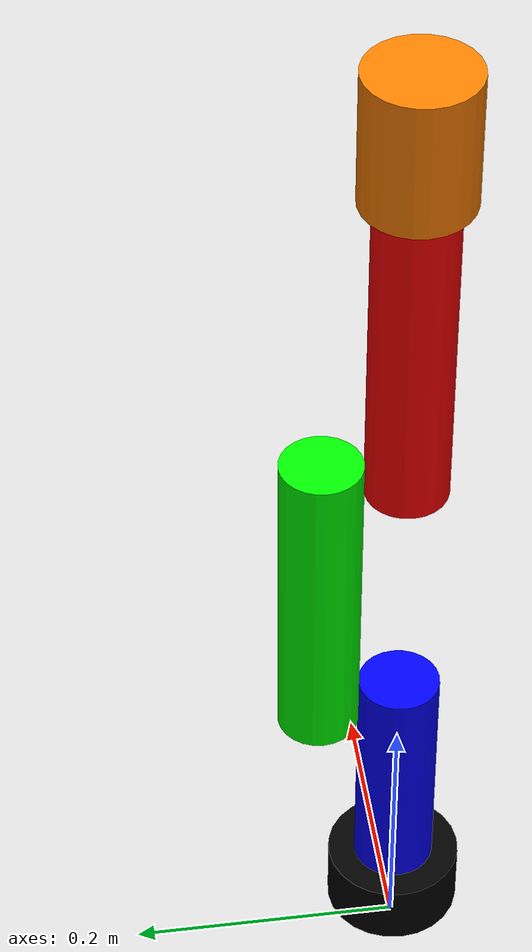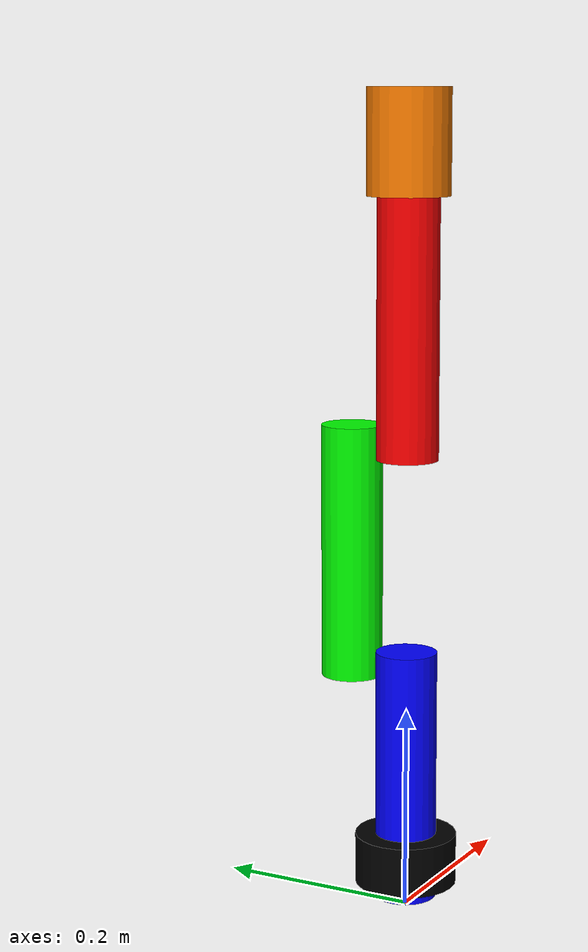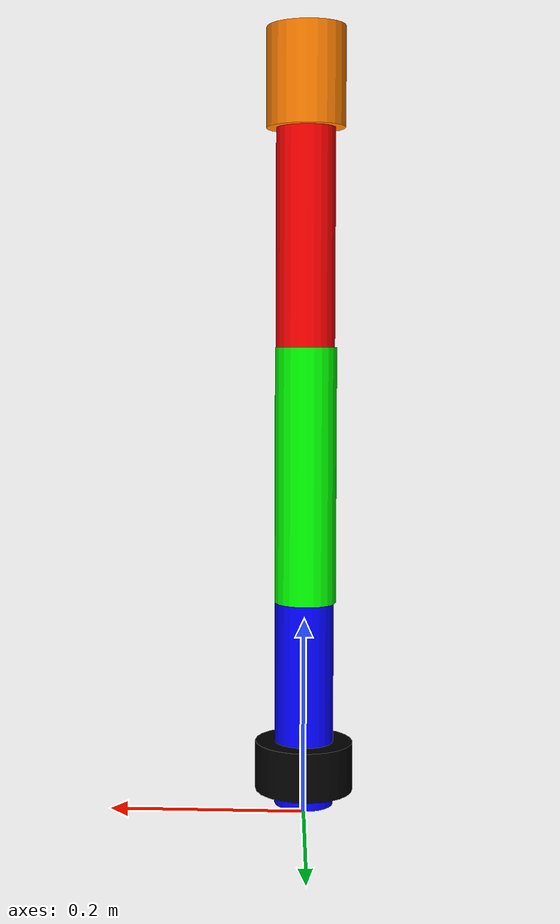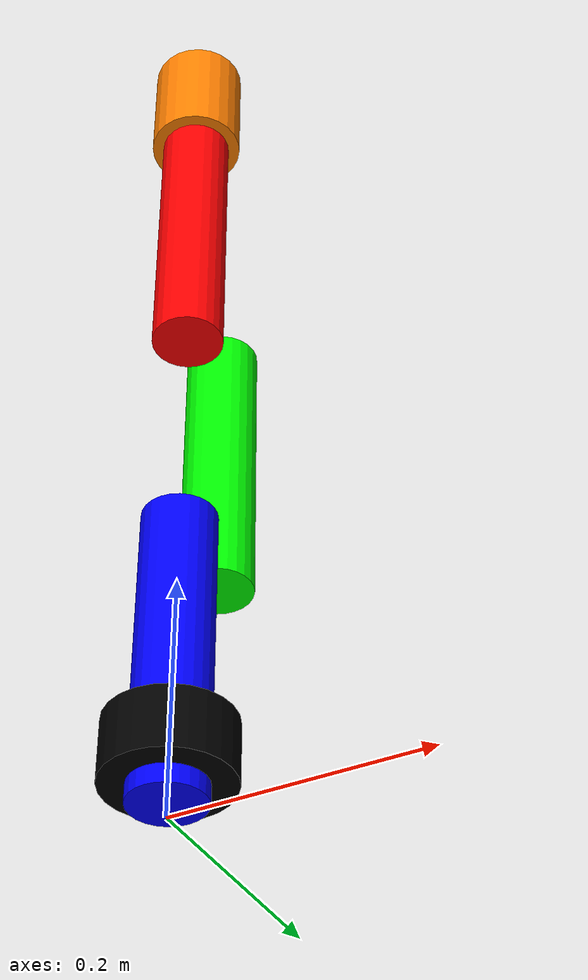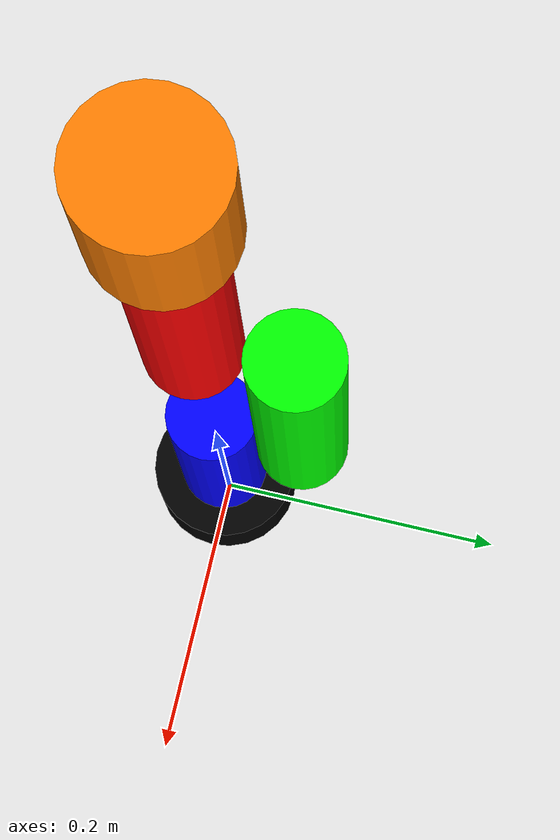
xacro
<?xml version="1.0"?>
<robot name="robot_arm" xmlns:xacro="http://ros.org/wiki/xacro">

  <xacro:include filename="$(find my_hexacopter)/urdf/gazebo_control.xacro"/>

  <xacro:property name="link_length" value="0.25"/>
  <xacro:property name="joint_radius" value="0.05"/>
  <xacro:property name="link_radius" value="0.03"/>
  <xacro:property name="gripper_length" value="0.1"/>
  <xacro:property name="link_mass" value="1.0"/>

  <link name="world">
    <inertial>
      <mass value="0.0"/>
      <origin xyz="0 0 0" rpy="0 0 0"/>
      <inertia ixx="0.0" ixy="0.0" ixz="0.0" iyy="0.0" iyz="0.0" izz="0.0"/>
    </inertial>
  </link>

<joint name="base_to_world" type="fixed">
  <parent link="world"/>
  <child link="base_link"/>
  <origin xyz="0 0 0" rpy="0 0 0"/>
</joint>

  <link name="base_link">
    <visual>
      <origin xyz="0 0 ${0.1 / 2}" rpy="0 0 0"/>
      <geometry>
        <cylinder length="0.05" radius="${link_radius + 0.02}"/>
      </geometry>
      <material name="black">
        <color rgba="0 0 0 1"/>
      </material>
    </visual>
    <collision>
      <origin xyz="0 0 ${0.1 / 2}" rpy="0 0 0"/>
      <geometry>
        <cylinder length="0.1" radius="${link_radius + 0.02}"/>
      </geometry>
    </collision>
    <inertial>
      <mass value="1.5"/>
      <origin xyz="0 0 ${0.1 / 2}" rpy="0 0 0"/>
      <inertia ixx="0.02" ixy="0.0" ixz="0.0" iyy="0.02" iyz="0.0" izz="0.02"/>
    </inertial>
  </link>

  <joint name="joint_1" type="revolute">
    <parent link="base_link"/>
    <child link="link_1"/>
    <origin xyz="0 0 ${0.01}" rpy="0 0 0"/>
    <axis xyz="0 1 0"/>
    <limit lower="-1.57" upper="1.57" effort="5.0" velocity="0.5"/>
    <dynamics damping="1.0" friction="1.0"/>
  </joint>

  <link name="link_1">
    <visual>
      <origin xyz="0 0 ${link_length / 2}" rpy="0 0 0"/>
      <geometry>
        <cylinder length="${link_length}" radius="${link_radius}"/>
      </geometry>
      <material name="blue">
        <color rgba="0 0 1 1"/>
      </material>
    </visual>
    <collision>
      <origin xyz="0 0 ${link_length / 2}" rpy="0 0 0"/>
      <geometry>
        <cylinder length="${link_length}" radius="${link_radius}"/>
      </geometry>
    </collision>
    <inertial>
      <mass value="${link_mass}"/>
      <origin xyz="0 0 ${link_length / 2}" rpy="0 0 0"/>
      <inertia ixx="0.005433" ixy="0.0" ixz="0.0" iyy="0.005433" iyz="0.0" izz="0.00045"/>
    </inertial>
  </link>

  <joint name="joint_2" type="revolute">
    <parent link="link_1"/>
    <child link="link_2"/>
    <origin xyz="0 0.06 ${link_length - 0.03}" rpy="0 0 0"/>
    <axis xyz="0 1 0"/>
    <limit lower="-2.5" upper="2.5" effort="5.0" velocity="0.5"/>
    <dynamics damping="1.0" friction="1.0"/>
  </joint>

  <link name="link_2">
    <visual>
      <origin xyz="0 0 ${link_length / 2}" rpy="0 0 0"/>
      <geometry>
        <cylinder length="${link_length}" radius="${link_radius}"/>
      </geometry>
      <material name="green">
        <color rgba="0 1 0 1"/>
      </material>
    </visual>
    <collision>
      <origin xyz="0 0 ${link_length / 2}" rpy="0 0 0"/>
      <geometry>
        <cylinder length="${link_length}" radius="${link_radius}"/>
      </geometry>
    </collision>
    <inertial>
      <mass value="${link_mass}"/>
      <origin xyz="0 0 ${link_length / 2}" rpy="0 0 0"/>
      <inertia ixx="0.005433" ixy="0.0" ixz="0.0" iyy="0.005433" iyz="0.0" izz="0.00045"/>
    </inertial>
  </link>

  <joint name="joint_3" type="revolute">
    <parent link="link_2"/>
    <child link="link_3"/>
    <origin xyz="0 -0.06 ${link_length - 0.03}" rpy="0 0 0"/>
    <axis xyz="0 1 0"/>
    <limit lower="-1.57" upper="1.57" effort="5.0" velocity="0.5"/>
    <dynamics damping="1.0" friction="1.0"/>
  </joint>

  <link name="link_3">
    <visual>
      <origin xyz="0 0 ${link_length / 2}" rpy="0 0 0"/>
      <geometry>
        <cylinder length="${link_length}" radius="${link_radius}"/>
      </geometry>
      <material name="red">
        <color rgba="1 0 0 1"/>
      </material>
    </visual>
    <collision>
      <origin xyz="0 0 ${link_length / 2}" rpy="0 0 0"/>
      <geometry>
        <cylinder length="${link_length}" radius="${link_radius}"/>
      </geometry>
    </collision>
    <inertial>
      <mass value="${link_mass}"/>
      <origin xyz="0 0 ${link_length / 2}" rpy="0 0 0"/>
      <inertia ixx="0.005433" ixy="0.0" ixz="0.0" iyy="0.005433" iyz="0.0" izz="0.00045"/>
    </inertial>
  </link>

  <joint name="gripper_joint" type="revolute">
    <parent link="link_3"/>
    <child link="gripper"/>
    <origin xyz="0 0 ${link_length}" rpy="0 0 0"/>
    <axis xyz="0 1 0"/>
    <limit lower="-0.5" upper="0.5" effort="5.0" velocity="1.0"/>
    <dynamics damping="1.0" friction="1.0"/>
  </joint>

  <link name="gripper">
    <visual>
      <origin xyz="0 0 ${gripper_length / 2}" rpy="0 0 0"/>
      <geometry>
        <cylinder length="${gripper_length}" radius="${link_radius + 0.01}"/>
      </geometry>
      <material name="orange">
        <color rgba="1 0.5 0 1"/>
      </material>
    </visual>
    <collision>
      <origin xyz="0 0 ${gripper_length / 2}" rpy="0 0 0"/>
      <geometry>
        <cylinder length="${gripper_length}" radius="${link_radius}"/>
      </geometry>
    </collision>
    <inertial>
      <mass value="0.2"/>
      <origin xyz="0 0 ${gripper_length / 2}" rpy="0 0 0"/>
      <inertia ixx="0.0002167" ixy="0.0" ixz="0.0" iyy="0.0002167" iyz="0.0" izz="0.00009"/>
    </inertial>
  </link>

  <transmission name="transmission_joint_1">
    <type>transmission_interface/SimpleTransmission</type>
    <joint name="joint_1">
      <hardwareInterface>position</hardwareInterface>
    </joint>
    <actuator name="motor_joint_1">
      <hardwareInterface>position</hardwareInterface>
      <mechanicalReduction>1</mechanicalReduction>
    </actuator>
  </transmission>

  <transmission name="transmission_joint_2">
    <type>transmission_interface/SimpleTransmission</type>
    <joint name="joint_2">
      <hardwareInterface>position</hardwareInterface>
    </joint>
    <actuator name="motor_joint_2">
      <hardwareInterface>position</hardwareInterface>
      <mechanicalReduction>1</mechanicalReduction>
    </actuator>
  </transmission>

  <transmission name="transmission_joint_3">
    <type>transmission_interface/SimpleTransmission</type>
    <joint name="joint_3">
      <hardwareInterface>position</hardwareInterface>
    </joint>
    <actuator name="motor_joint_3">
      <hardwareInterface>position</hardwareInterface>
      <mechanicalReduction>1</mechanicalReduction>
    </actuator>
  </transmission>
</robot>
